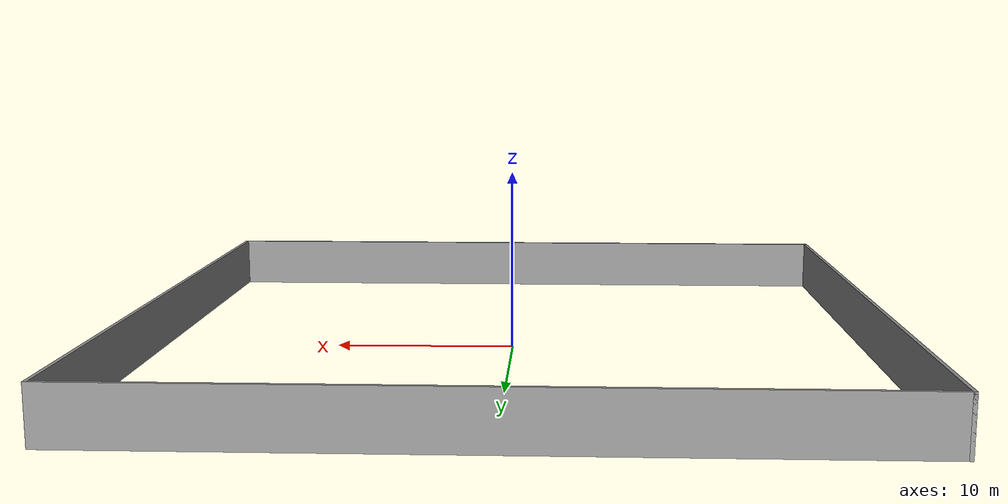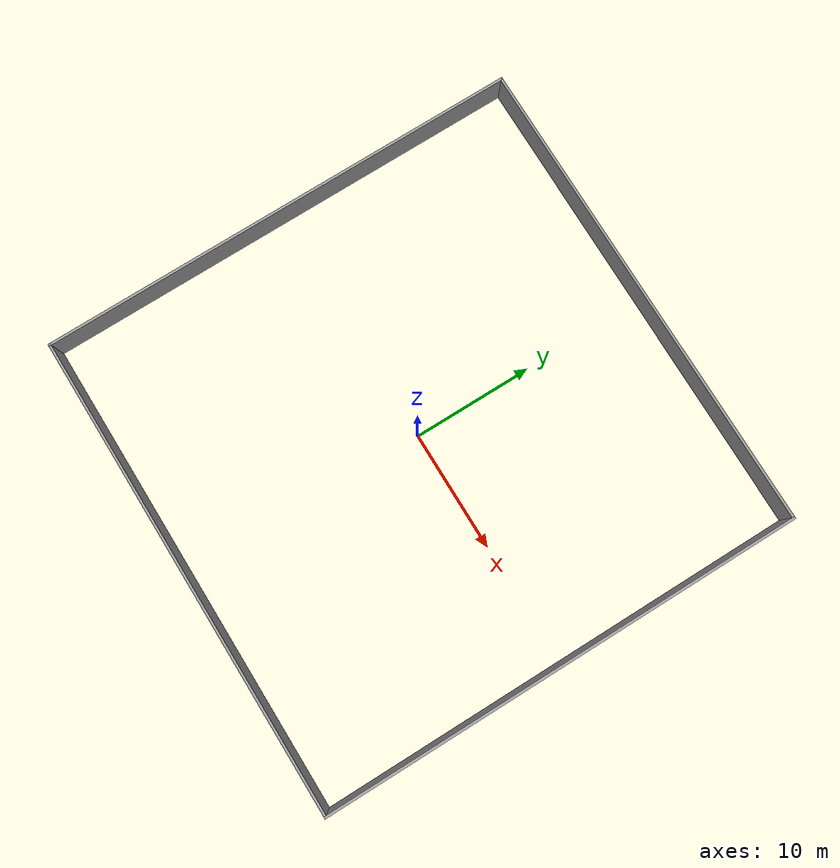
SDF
<?xml version='1.0'?>
<sdf version='1.6'>
  <model name='Fence40'>
    <pose frame=''>0 0 0 0 -0 0</pose>
    <link name='Wall_11'>
      <collision name='Wall_11_Collision'>
        <geometry>
          <box>
            <size>0.15 0.15 2.5</size>
          </box>
        </geometry>
        <pose frame=''>0 0 1.25 0 -0 0</pose>
      </collision>
      <visual name='Wall_11_Visual'>
        <pose frame=''>0 0 1.25 0 -0 0</pose>
        <geometry>
          <box>
            <size>0.15 0.15 2.5</size>
          </box>
        </geometry>
        <material>
          <script>
            <uri>file://media/materials/scripts/gazebo.material</uri>
            <name>Gazebo/Grey</name>
          </script>
          <ambient>1 1 1 1</ambient>
        </material>
        <meta>
          <layer>0</layer>
        </meta>
      </visual>
      <pose frame=''>20 -20 0 0 -0 0</pose>
    </link>
    <link name='Wall_12'>
      <collision name='Wall_12_Collision'>
        <geometry>
          <box>
            <size>40.2 0.2 3</size>
          </box>
        </geometry>
        <pose frame=''>0 0 1.5 0 -0 0</pose>
      </collision>
      <visual name='Wall_12_Visual'>
        <pose frame=''>0 0 1.5 0 -0 0</pose>
        <geometry>
          <box>
            <size>40.2 0.2 3</size>
          </box>
        </geometry>
        <material>
          <script>
            <uri>file://media/materials/scripts/gazebo.material</uri>
            <name>Gazebo/Grey</name>
          </script>
          <ambient>1 1 1 1</ambient>
        </material>
        <meta>
          <layer>0</layer>
        </meta>
      </visual>
      <pose frame=''>20 0 0 0 -0 1.5708</pose>
    </link>
    <link name='Wall_15'>
      <collision name='Wall_15_Collision'>
        <geometry>
          <box>
            <size>40.2 0.2 3</size>
          </box>
        </geometry>
        <pose frame=''>0 0 1.5 0 -0 0</pose>
      </collision>
      <visual name='Wall_15_Visual'>
        <pose frame=''>0 0 1.5 0 -0 0</pose>
        <geometry>
          <box>
            <size>40.2 0.2 3</size>
          </box>
        </geometry>
        <material>
          <script>
            <uri>file://media/materials/scripts/gazebo.material</uri>
            <name>Gazebo/Grey</name>
          </script>
          <ambient>1 1 1 1</ambient>
        </material>
        <meta>
          <layer>0</layer>
        </meta>
      </visual>
      <pose frame=''>0 -20 0 0 -0 3.14159</pose>
    </link>
    <link name='Wall_16'>
      <collision name='Wall_16_Collision'>
        <geometry>
          <box>
            <size>40.2 0.2 3</size>
          </box>
        </geometry>
        <pose frame=''>0 0 1.5 0 -0 0</pose>
      </collision>
      <visual name='Wall_16_Visual'>
        <pose frame=''>0 0 1.5 0 -0 0</pose>
        <geometry>
          <box>
            <size>40.2 0.2 3</size>
          </box>
        </geometry>
        <material>
          <script>
            <uri>file://media/materials/scripts/gazebo.material</uri>
            <name>Gazebo/Grey</name>
          </script>
          <ambient>1 1 1 1</ambient>
        </material>
        <meta>
          <layer>0</layer>
        </meta>
      </visual>
      <pose frame=''>-20 0 0 0 -0 1.5708</pose>
    </link>
    <link name='Wall_17'>
      <collision name='Wall_17_Collision'>
        <geometry>
          <box>
            <size>40.2 0.2 3</size>
          </box>
        </geometry>
        <pose frame=''>0 0 1.5 0 -0 0</pose>
      </collision>
      <visual name='Wall_17_Visual'>
        <pose frame=''>0 0 1.5 0 -0 0</pose>
        <geometry>
          <box>
            <size>40.2 0.2 3</size>
          </box>
        </geometry>
        <material>
          <script>
            <uri>file://media/materials/scripts/gazebo.material</uri>
            <name>Gazebo/Grey</name>
          </script>
          <ambient>1 1 1 1</ambient>
        </material>
        <meta>
          <layer>0</layer>
        </meta>
      </visual>
      <pose frame=''>0 20 0 0 -0 0</pose>
    </link>
    <static>1</static>
  </model>
</sdf>
